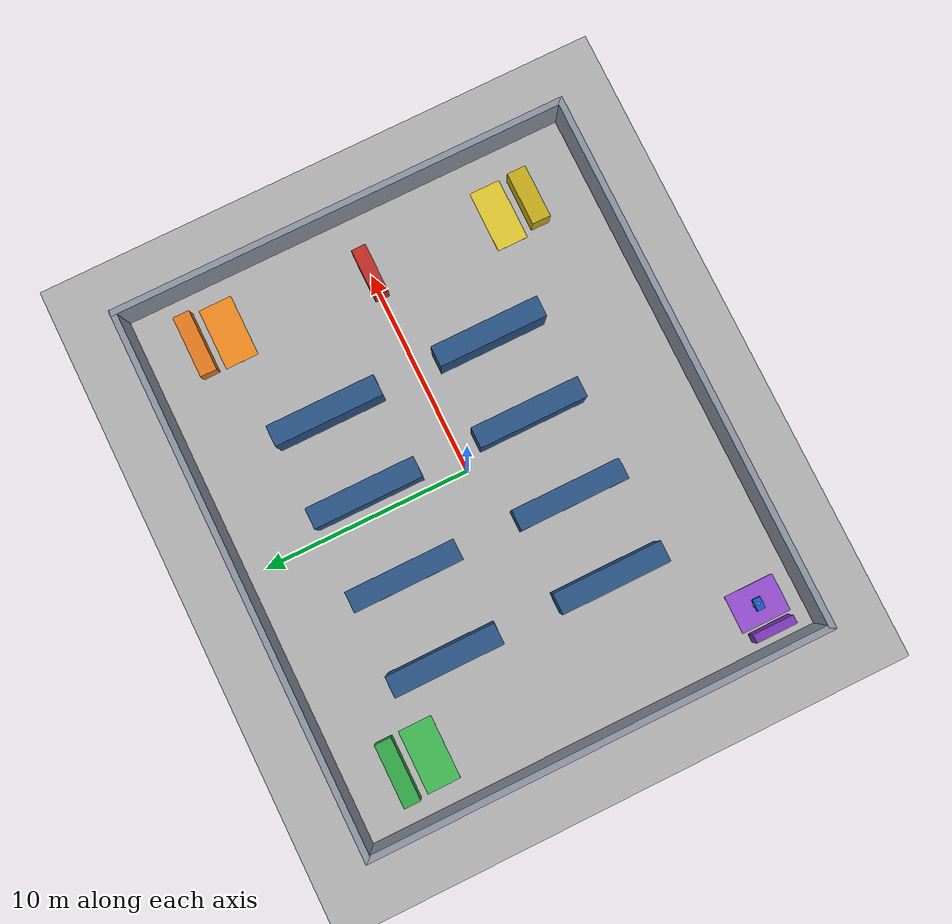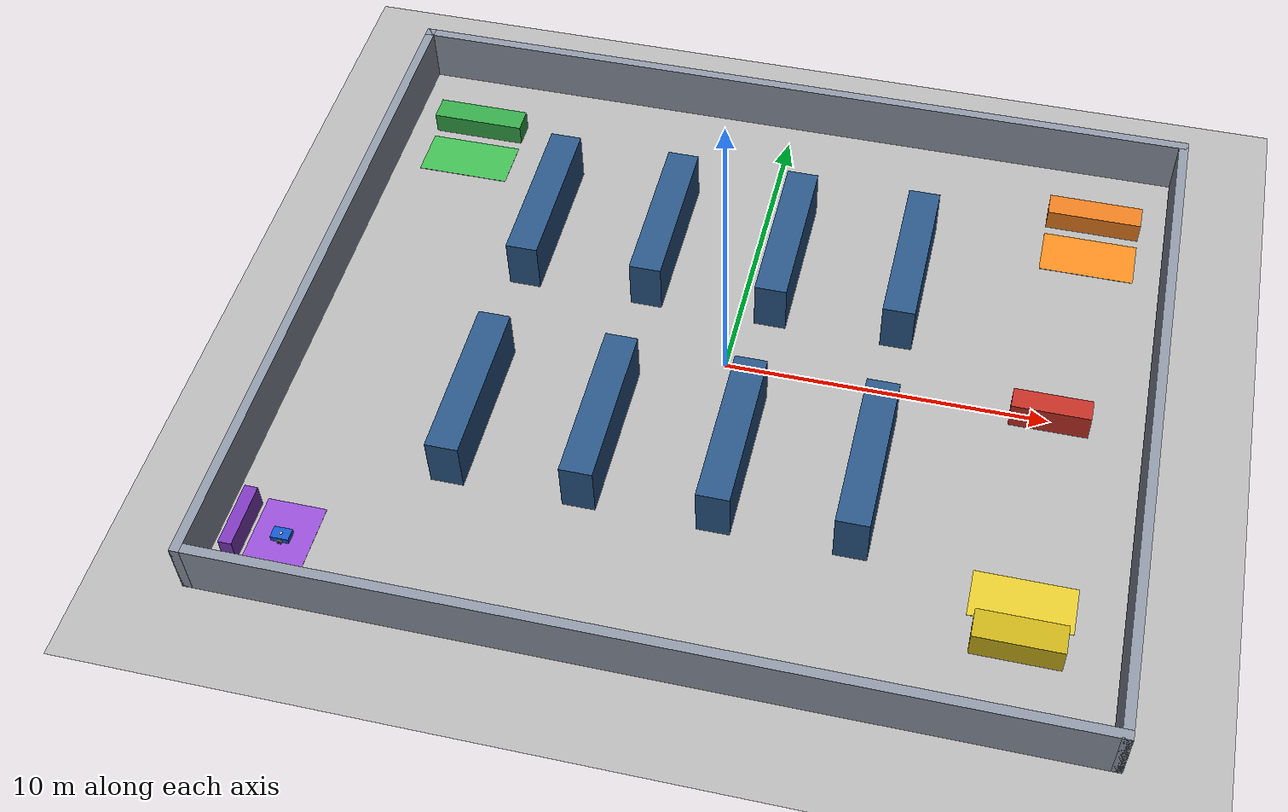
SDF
<?xml version="1.0" ?>
<sdf version="1.9">
  <world name="warehouse_mission_world">
    <physics name="default" type="ode"><max_step_size>0.001</max_step_size><real_time_factor>1.0</real_time_factor><real_time_update_rate>1000</real_time_update_rate></physics>
    <plugin filename="gz-sim-physics-system" name="gz::sim::systems::Physics"/>
    <plugin filename="gz-sim-user-commands-system" name="gz::sim::systems::UserCommands"/>
    <plugin filename="gz-sim-scene-broadcaster-system" name="gz::sim::systems::SceneBroadcaster"/>
    <plugin filename="gz-sim-sensors-system" name="gz::sim::systems::Sensors"/>
    <plugin filename="gz-sim-contact-system" name="gz::sim::systems::Contact"/>
    <plugin filename="gz-sim-imu-system" name="gz::sim::systems::Imu"/>
    <model name="warehouse_floor"><static>true</static><link name="floor"><collision name="collision"><geometry><plane><normal>0 0 1</normal><size>32 28</size></plane></geometry><surface><friction><ode><mu>1.0</mu><mu2>1.0</mu2></ode></friction></surface></collision><visual name="visual"><geometry><plane><normal>0 0 1</normal><size>32 28</size></plane></geometry><material><ambient>0.70 0.70 0.70 1</ambient><diffuse>0.70 0.70 0.70 1</diffuse></material></visual></link></model>
    <light type="directional" name="sun"><cast_shadows>true</cast_shadows><pose>0 0 14 0 0 0</pose><diffuse>0.85 0.85 0.85 1</diffuse><specular>0.2 0.2 0.2 1</specular><direction>-0.4 0.2 -0.9</direction></light>
    <model name="warehouse_structure"><static>true</static>
      <link name="north_wall">
        <pose>0.0 11.0 0.9 0 0 0</pose>
        <collision name="collision"><geometry><box><size>26.3 0.3 1.8</size></box></geometry></collision>
        <visual name="visual"><geometry><box><size>26.3 0.3 1.8</size></box></geometry><material><ambient>0.55 0.58 0.64 1</ambient><diffuse>0.55 0.58 0.64 1</diffuse></material></visual>
      </link>
      <link name="south_wall">
        <pose>0.0 -11.0 0.9 0 0 0</pose>
        <collision name="collision"><geometry><box><size>26.3 0.3 1.8</size></box></geometry></collision>
        <visual name="visual"><geometry><box><size>26.3 0.3 1.8</size></box></geometry><material><ambient>0.55 0.58 0.64 1</ambient><diffuse>0.55 0.58 0.64 1</diffuse></material></visual>
      </link>
      <link name="west_wall">
        <pose>-13.0 0.0 0.9 0 0 0</pose>
        <collision name="collision"><geometry><box><size>0.3 22.3 1.8</size></box></geometry></collision>
        <visual name="visual"><geometry><box><size>0.3 22.3 1.8</size></box></geometry><material><ambient>0.55 0.58 0.64 1</ambient><diffuse>0.55 0.58 0.64 1</diffuse></material></visual>
      </link>
      <link name="east_wall">
        <pose>13.0 0.0 0.9 0 0 0</pose>
        <collision name="collision"><geometry><box><size>0.3 22.3 1.8</size></box></geometry></collision>
        <visual name="visual"><geometry><box><size>0.3 22.3 1.8</size></box></geometry><material><ambient>0.55 0.58 0.64 1</ambient><diffuse>0.55 0.58 0.64 1</diffuse></material></visual>
      </link>
      <link name="shelf_a1">
        <pose>-7.0 4.5 0.85 0 0 0</pose>
        <collision name="collision"><geometry><box><size>1.0 5.2 1.7</size></box></geometry></collision>
        <visual name="visual"><geometry><box><size>1.0 5.2 1.7</size></box></geometry><material><ambient>0.16 0.33 0.52 1</ambient><diffuse>0.16 0.33 0.52 1</diffuse></material></visual>
      </link>
      <link name="shelf_a2">
        <pose>-3.0 4.5 0.85 0 0 0</pose>
        <collision name="collision"><geometry><box><size>1.0 5.2 1.7</size></box></geometry></collision>
        <visual name="visual"><geometry><box><size>1.0 5.2 1.7</size></box></geometry><material><ambient>0.16 0.33 0.52 1</ambient><diffuse>0.16 0.33 0.52 1</diffuse></material></visual>
      </link>
      <link name="shelf_b1">
        <pose>1.0 4.5 0.85 0 0 0</pose>
        <collision name="collision"><geometry><box><size>1.0 5.2 1.7</size></box></geometry></collision>
        <visual name="visual"><geometry><box><size>1.0 5.2 1.7</size></box></geometry><material><ambient>0.16 0.33 0.52 1</ambient><diffuse>0.16 0.33 0.52 1</diffuse></material></visual>
      </link>
      <link name="shelf_b2">
        <pose>5.0 4.5 0.85 0 0 0</pose>
        <collision name="collision"><geometry><box><size>1.0 5.2 1.7</size></box></geometry></collision>
        <visual name="visual"><geometry><box><size>1.0 5.2 1.7</size></box></geometry><material><ambient>0.16 0.33 0.52 1</ambient><diffuse>0.16 0.33 0.52 1</diffuse></material></visual>
      </link>
      <link name="shelf_c1">
        <pose>-7.0 -3.5 0.85 0 0 0</pose>
        <collision name="collision"><geometry><box><size>1.0 5.2 1.7</size></box></geometry></collision>
        <visual name="visual"><geometry><box><size>1.0 5.2 1.7</size></box></geometry><material><ambient>0.16 0.33 0.52 1</ambient><diffuse>0.16 0.33 0.52 1</diffuse></material></visual>
      </link>
      <link name="shelf_c2">
        <pose>-3.0 -3.5 0.85 0 0 0</pose>
        <collision name="collision"><geometry><box><size>1.0 5.2 1.7</size></box></geometry></collision>
        <visual name="visual"><geometry><box><size>1.0 5.2 1.7</size></box></geometry><material><ambient>0.16 0.33 0.52 1</ambient><diffuse>0.16 0.33 0.52 1</diffuse></material></visual>
      </link>
      <link name="shelf_d1">
        <pose>1.0 -3.5 0.85 0 0 0</pose>
        <collision name="collision"><geometry><box><size>1.0 5.2 1.7</size></box></geometry></collision>
        <visual name="visual"><geometry><box><size>1.0 5.2 1.7</size></box></geometry><material><ambient>0.16 0.33 0.52 1</ambient><diffuse>0.16 0.33 0.52 1</diffuse></material></visual>
      </link>
      <link name="shelf_d2">
        <pose>5.0 -3.5 0.85 0 0 0</pose>
        <collision name="collision"><geometry><box><size>1.0 5.2 1.7</size></box></geometry></collision>
        <visual name="visual"><geometry><box><size>1.0 5.2 1.7</size></box></geometry><material><ambient>0.16 0.33 0.52 1</ambient><diffuse>0.16 0.33 0.52 1</diffuse></material></visual>
      </link>
      <link name="inbound_dock">
        <pose>-10.5 8.5 0.35 0 0 0</pose>
        <collision name="collision"><geometry><box><size>3.0 0.8 0.7</size></box></geometry></collision>
        <visual name="visual"><geometry><box><size>3.0 0.8 0.7</size></box></geometry><material><ambient>0.2 0.65 0.28 1</ambient><diffuse>0.2 0.65 0.28 1</diffuse></material></visual>
      </link>
      <link name="outbound_dock">
        <pose>10.5 8.5 0.35 0 0 0</pose>
        <collision name="collision"><geometry><box><size>3.0 0.8 0.7</size></box></geometry></collision>
        <visual name="visual"><geometry><box><size>3.0 0.8 0.7</size></box></geometry><material><ambient>0.9 0.48 0.12 1</ambient><diffuse>0.9 0.48 0.12 1</diffuse></material></visual>
      </link>
      <link name="quality_station">
        <pose>10.0 -8.0 0.45 0 0 0</pose>
        <collision name="collision"><geometry><box><size>2.6 0.9 0.9</size></box></geometry></collision>
        <visual name="visual"><geometry><box><size>2.6 0.9 0.9</size></box></geometry><material><ambient>0.78 0.68 0.1 1</ambient><diffuse>0.78 0.68 0.1 1</diffuse></material></visual>
      </link>
      <link name="charging_dock">
        <pose>-12.2 -9.0 0.4 0 0 0</pose>
        <collision name="collision"><geometry><box><size>0.4 2.0 0.8</size></box></geometry></collision>
        <visual name="visual"><geometry><box><size>0.4 2.0 0.8</size></box></geometry><material><ambient>0.48 0.22 0.72 1</ambient><diffuse>0.48 0.22 0.72 1</diffuse></material></visual>
      </link></model>
    <model name="warehouse_floor_zones"><static>true</static>
      <link name="inbound_zone">
        <pose>-10.5 7.0 0.006 0 0 0</pose>
        <visual name="visual"><geometry><box><size>3.0 1.6 0.01</size></box></geometry><material><ambient>0.25 0.72 0.32 1</ambient><diffuse>0.25 0.72 0.32 1</diffuse></material></visual>
      </link>
      <link name="outbound_zone">
        <pose>10.5 7.0 0.006 0 0 0</pose>
        <visual name="visual"><geometry><box><size>3.0 1.6 0.01</size></box></geometry><material><ambient>0.95 0.54 0.12 1</ambient><diffuse>0.95 0.54 0.12 1</diffuse></material></visual>
      </link>
      <link name="quality_zone">
        <pose>10.0 -6.5 0.006 0 0 0</pose>
        <visual name="visual"><geometry><box><size>3.0 1.5 0.01</size></box></geometry><material><ambient>0.88 0.78 0.18 1</ambient><diffuse>0.88 0.78 0.18 1</diffuse></material></visual>
      </link>
      <link name="charging_zone">
        <pose>-11.0 -9.0 0.006 0 0 0</pose>
        <visual name="visual"><geometry><box><size>1.8 2.4 0.01</size></box></geometry><material><ambient>0.58 0.3 0.82 1</ambient><diffuse>0.58 0.3 0.82 1</diffuse></material></visual>
      </link></model>

    <model name="movable_test_cart">
      <static>true</static>
      <pose>10 0 0.45 0 0 0</pose>
      <link name="body">
        <inertial><mass>18.0</mass><inertia><ixx>1.0</ixx><iyy>1.0</iyy><izz>1.0</izz><ixy>0</ixy><ixz>0</ixz><iyz>0</iyz></inertia></inertial>
        <collision name="collision"><geometry><box><size>2.4 0.7 0.9</size></box></geometry><surface><friction><ode><mu>0.9</mu><mu2>0.9</mu2></ode></friction></surface></collision>
        <visual name="visual"><geometry><box><size>2.4 0.7 0.9</size></box></geometry><material><ambient>0.75 0.18 0.14 1</ambient><diffuse>0.75 0.18 0.14 1</diffuse></material></visual>
      </link>
    </model>

    <model name="warehouse_amr">
      <pose>-11 -9 0 0 0 3.141592653589793</pose>
      <link name="base_link">
        <inertial>
          <pose>-0.04 0 0.13 0 0 0</pose><mass>9.0</mass>
          <inertia><ixx>0.12</ixx><iyy>0.11</iyy><izz>0.16</izz><ixy>0</ixy><ixz>0</ixz><iyz>0</iyz></inertia>
        </inertial>
        <collision name="collision">
          <pose>0 0 0.15 0 0 0</pose><geometry><box><size>0.55 0.38 0.18</size></box></geometry>
          <surface><friction><ode><mu>0.8</mu><mu2>0.8</mu2></ode></friction></surface>
        </collision>
        <visual name="visual">
          <pose>0 0 0.15 0 0 0</pose><geometry><box><size>0.55 0.38 0.18</size></box></geometry>
          <material><ambient>0.08 0.34 0.78 1</ambient><diffuse>0.08 0.34 0.78 1</diffuse></material>
        </visual>
      </link>
      <link name="left_wheel">
        <pose relative_to="base_link">0 0.21 0.08 0 0 0</pose>
        <inertial><mass>0.35</mass><inertia><ixx>0.0008</ixx><iyy>0.0008</iyy><izz>0.0008</izz><ixy>0</ixy><ixz>0</ixz><iyz>0</iyz></inertia></inertial>
        <collision name="collision"><pose>0 0 0 1.5707963 0 0</pose><geometry><cylinder><radius>0.08</radius><length>0.04</length></cylinder></geometry><surface><friction><ode><mu>1.3</mu><mu2>1.3</mu2></ode></friction></surface></collision>
        <visual name="visual"><pose>0 0 0 1.5707963 0 0</pose><geometry><cylinder><radius>0.08</radius><length>0.04</length></cylinder></geometry><material><ambient>0.05 0.05 0.05 1</ambient><diffuse>0.05 0.05 0.05 1</diffuse></material></visual>
      </link>
      <link name="right_wheel">
        <pose relative_to="base_link">0 -0.21 0.08 0 0 0</pose>
        <inertial><mass>0.35</mass><inertia><ixx>0.0008</ixx><iyy>0.0008</iyy><izz>0.0008</izz><ixy>0</ixy><ixz>0</ixz><iyz>0</iyz></inertia></inertial>
        <collision name="collision"><pose>0 0 0 1.5707963 0 0</pose><geometry><cylinder><radius>0.08</radius><length>0.04</length></cylinder></geometry><surface><friction><ode><mu>1.3</mu><mu2>1.3</mu2></ode></friction></surface></collision>
        <visual name="visual"><pose>0 0 0 1.5707963 0 0</pose><geometry><cylinder><radius>0.08</radius><length>0.04</length></cylinder></geometry><material><ambient>0.05 0.05 0.05 1</ambient><diffuse>0.05 0.05 0.05 1</diffuse></material></visual>
      </link>
      <link name="caster">
        <pose relative_to="base_link">-0.21 0 0.035 0 0 0</pose>
        <inertial><mass>0.08</mass><inertia><ixx>0.0002</ixx><iyy>0.0002</iyy><izz>0.0002</izz><ixy>0</ixy><ixz>0</ixz><iyz>0</iyz></inertia></inertial>
        <collision name="collision"><geometry><sphere><radius>0.035</radius></sphere></geometry></collision>
        <visual name="visual"><geometry><sphere><radius>0.035</radius></sphere></geometry><material><ambient>0.15 0.15 0.15 1</ambient><diffuse>0.15 0.15 0.15 1</diffuse></material></visual>
      </link>
      <link name="lidar_link">
        <pose relative_to="base_link">0 0 0.24 0 0 0</pose>
        <inertial><mass>0.08</mass><inertia><ixx>0.0002</ixx><iyy>0.0002</iyy><izz>0.0002</izz><ixy>0</ixy><ixz>0</ixz><iyz>0</iyz></inertia></inertial>
        <visual name="visual"><geometry><cylinder><radius>0.045</radius><length>0.035</length></cylinder></geometry><material><ambient>0.9 0.9 0.9 1</ambient><diffuse>0.9 0.9 0.9 1</diffuse></material></visual>
        <sensor type="gpu_lidar" name="warehouse_lidar">
          <pose>0 0 0.025 0 0 0</pose><topic>/warehouse/scan</topic><update_rate>12</update_rate><always_on>1</always_on><visualize>true</visualize>
          <lidar><scan><horizontal><samples>720</samples><resolution>1</resolution><min_angle>-3.14159265358979</min_angle><max_angle>3.14159265358979</max_angle></horizontal><vertical><samples>1</samples><resolution>1</resolution><min_angle>0</min_angle><max_angle>0</max_angle></vertical></scan><range><min>0.15</min><max>20.0</max></range></lidar>
        </sensor>
      </link>
      <joint name="left_wheel_joint" type="revolute"><parent>base_link</parent><child>left_wheel</child><pose relative_to="left_wheel">0 0 0 0 0 0</pose><axis><xyz expressed_in="base_link">0 1 0</xyz></axis></joint>
      <joint name="right_wheel_joint" type="revolute"><parent>base_link</parent><child>right_wheel</child><pose relative_to="right_wheel">0 0 0 0 0 0</pose><axis><xyz expressed_in="base_link">0 1 0</xyz></axis></joint>
      <joint name="caster_joint" type="fixed"><parent>base_link</parent><child>caster</child><pose relative_to="caster">0 0 0 0 0 0</pose></joint>
      <joint name="lidar_joint" type="fixed"><parent>base_link</parent><child>lidar_link</child><pose relative_to="lidar_link">0 0 0 0 0 0</pose></joint>
      <plugin filename="gz-sim-diff-drive-system" name="gz::sim::systems::DiffDrive">
        <left_joint>left_wheel_joint</left_joint><right_joint>right_wheel_joint</right_joint>
        <wheel_separation>0.42</wheel_separation><wheel_radius>0.08</wheel_radius>
        <odom_publish_frequency>30</odom_publish_frequency><topic>/model/warehouse_amr/cmd_vel</topic><odom_topic>/model/warehouse_amr/odometry</odom_topic><publish_odom>true</publish_odom><publish_wheel_tf>false</publish_wheel_tf>
      </plugin>
    </model>
  </world>
</sdf>
